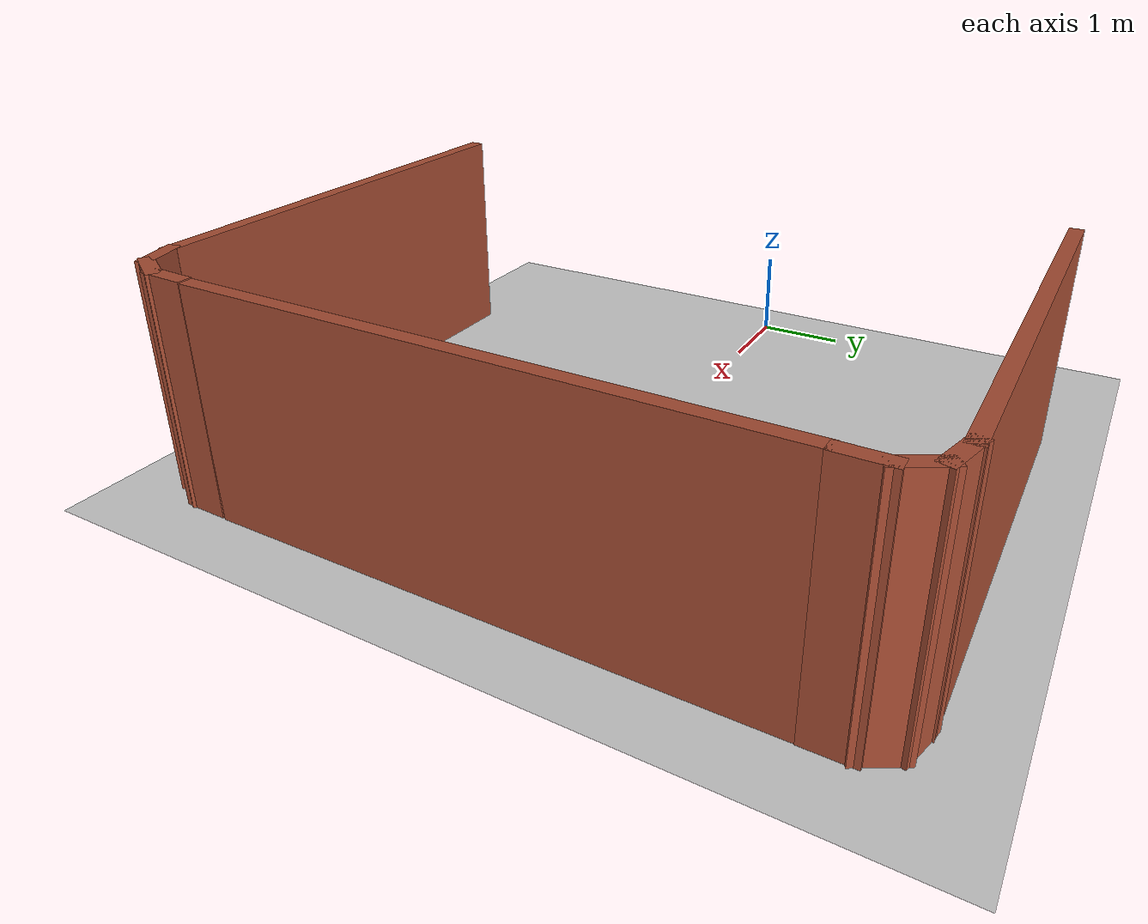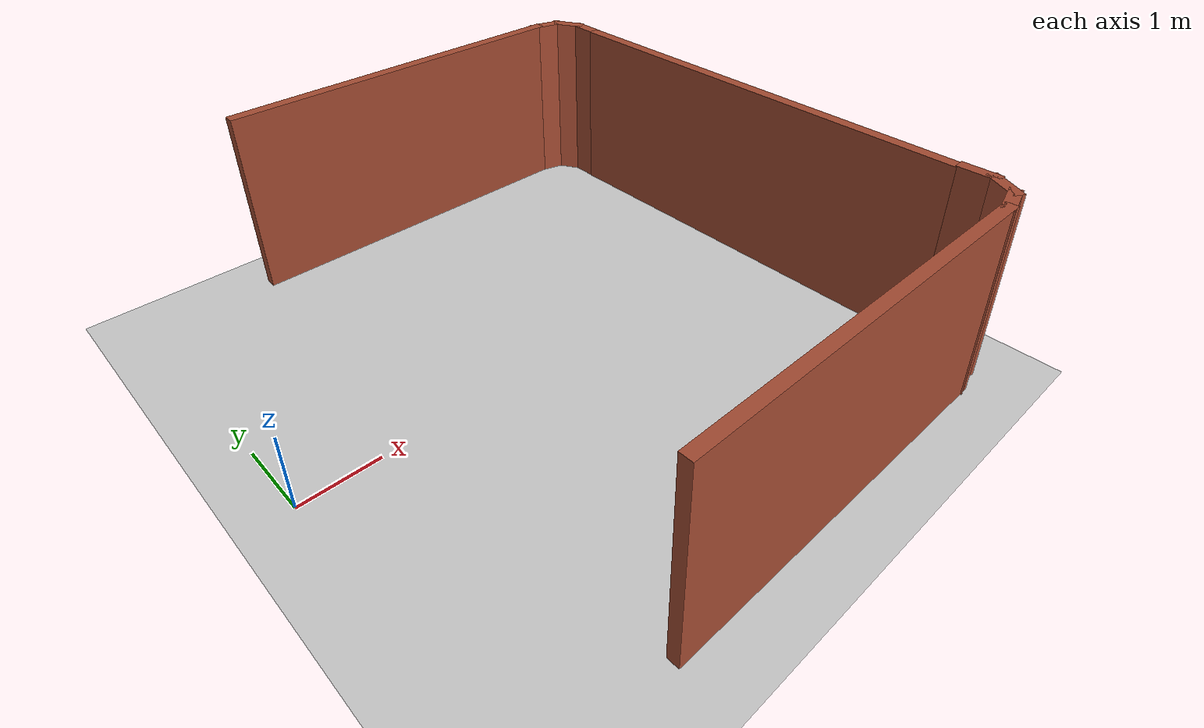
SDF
<sdf version="1.6">
 <world name="default">
  <light name="sun" type="directional">
   <pose>0 0 10 0 -0 0</pose>
   <diffuse>0.8 0.8 0.8 1</diffuse>
   <specular>0.2 0.2 0.2 1</specular>
   <attenuation>
    <range>1000</range>
    <constant>0.9</constant>
    <linear>0.01</linear>
    <quadratic>0.001</quadratic>
   </attenuation>
   <direction>-0.5 0.1 -0.9</direction>
  </light>
  <model name="ground_plane">
   <static>1</static>
   <link name="link">
    <collision name="collision">
     <geometry><plane><normal>0 0 1</normal><size>100 100</size></plane></geometry>
     <surface><friction><ode><mu>100</mu><mu2>50</mu2></ode></friction></surface>
    </collision>
    <visual name="visual">
     <cast_shadows>0</cast_shadows>
     <geometry><plane><normal>0 0 1</normal><size>100 100</size></plane></geometry>
     <material>
      <script><uri>file://media/materials/scripts/gazebo.material</uri><name>Gazebo/Grey</name></script>
     </material>
    </visual>
   </link>
  </model>
  <gravity>0 0 -9.8</gravity>
  <magnetic_field>6e-06 2.3e-05 -4.2e-05</magnetic_field>
  <atmosphere type="adiabatic"/>
  <physics name="default_physics" default="0" type="ode">
   <max_step_size>0.001</max_step_size>
   <real_time_factor>1</real_time_factor>
   <real_time_update_rate>1000</real_time_update_rate>
  </physics>
  <scene><ambient>0.4 0.4 0.4 1</ambient><background>0.7 0.7 0.7 1</background><shadows>1</shadows></scene>
  <audio><device>default</device></audio>
  <spherical_coordinates>
   <surface_model>EARTH_WGS84</surface_model>
   <latitude_deg>0</latitude_deg>
   <longitude_deg>0</longitude_deg>
   <elevation>0</elevation>
   <heading_deg>0</heading_deg>
  </spherical_coordinates>
  <model name="6mWall">
   <pose>6.99559 0.068896 0 0 -0 0</pose>
   <link name="Wall_3">
    <collision name="Wall_3_Collision">
     <geometry><box><size>6 0.15 2.5</size></box></geometry>
     <pose>0 0 1.25 0 -0 0</pose>
    </collision>
    <visual name="Wall_3_Visual">
     <pose>0 0 1.25 0 -0 0</pose>
     <geometry><box><size>6 0.15 2.5</size></box></geometry>
     <material>
      <script><uri>file://media/materials/scripts/gazebo.material</uri><name>Gazebo/Bricks</name></script>
      <ambient>1 1 1 1</ambient>
     </material>
     <meta><layer>0</layer></meta>
    </visual>
    <pose>0 -0 0 0 -0 1.5708</pose>
   </link>
   <static>1</static>
  </model>
  <model name="u_shape_part">
   <pose>4.33552 3.46905 0 0 -0 1.56859</pose>
   <link name="Wall_2">
    <collision name="Wall_2_Collision">
     <geometry><box><size>0.5 0.15 2.5</size></box></geometry>
     <pose>0 0 1.25 0 -0 0</pose>
    </collision>
    <visual name="Wall_2_Visual">
     <pose>0 0 1.25 0 -0 0</pose>
     <geometry><box><size>0.5 0.15 2.5</size></box></geometry>
     <material>
      <script><uri>file://media/materials/scripts/gazebo.material</uri><name>Gazebo/Bricks</name></script>
      <ambient>1 1 1 1</ambient>
     </material>
     <meta><layer>0</layer></meta>
    </visual>
    <pose>-0.205276 -2.66781 0 0 -0 0</pose>
   </link>
   <link name="Wall_3">
    <collision name="Wall_3_Collision">
     <geometry><box><size>0.5 0.15 2.5</size></box></geometry>
     <pose>0 0 1.25 0 -0 0</pose>
    </collision>
    <visual name="Wall_3_Visual">
     <pose>0 0 1.25 0 -0 0</pose>
     <geometry><box><size>0.5 0.15 2.5</size></box></geometry>
     <material>
      <script><uri>file://media/materials/scripts/gazebo.material</uri><name>Gazebo/Bricks</name></script>
      <ambient>1 1 1 1</ambient>
     </material>
     <meta><layer>0</layer></meta>
    </visual>
    <pose>0.121279 -2.58031 0 0 -0 0.523599</pose>
   </link>
   <link name="Wall_4">
    <collision name="Wall_4_Collision">
     <geometry><box><size>0.5 0.15 2.5</size></box></geometry>
     <pose>0 0 1.25 0 -0 0</pose>
    </collision>
    <visual name="Wall_4_Visual">
     <pose>0 0 1.25 0 -0 0</pose>
     <geometry><box><size>0.5 0.15 2.5</size></box></geometry>
     <material>
      <script><uri>file://media/materials/scripts/gazebo.material</uri><name>Gazebo/Bricks</name></script>
      <ambient>1 1 1 1</ambient>
     </material>
     <meta><layer>0</layer></meta>
    </visual>
    <pose>0.318126 -2.32377 0 0 -0 1.309</pose>
   </link>
   <link name="Wall_5">
    <collision name="Wall_5_Collision">
     <geometry><box><size>5 0.15 2.5</size></box></geometry>
     <pose>0 0 1.25 0 -0 0</pose>
    </collision>
    <visual name="Wall_5_Visual">
     <pose>0 0 1.25 0 -0 0</pose>
     <geometry><box><size>5 0.15 2.5</size></box></geometry>
     <material>
      <script><uri>file://media/materials/scripts/gazebo.material</uri><name>Gazebo/Bricks</name></script>
      <ambient>1 1 1 1</ambient>
     </material>
     <meta><layer>0</layer></meta>
    </visual>
    <pose>0.36342 0.270263 0 0 -0 1.5708</pose>
   </link>
   <static>1</static>
  </model>
  <model name="u_shape_part_clone">
   <pose>4.33345 -3.36047 2.51859 3.14159 -0.012814 -1.573</pose>
   <link name="Wall_2">
    <collision name="Wall_2_Collision">
     <geometry><box><size>0.5 0.15 2.5</size></box></geometry>
     <pose>0 0 1.25 0 -0 0</pose>
    </collision>
    <visual name="Wall_2_Visual">
     <pose>0 0 1.25 0 -0 0</pose>
     <geometry><box><size>0.5 0.15 2.5</size></box></geometry>
     <material>
      <script><uri>file://media/materials/scripts/gazebo.material</uri><name>Gazebo/Bricks</name></script>
      <ambient>1 1 1 1</ambient>
     </material>
     <meta><layer>0</layer></meta>
    </visual>
    <pose>-0.205276 -2.66781 0 0 -0 0</pose>
   </link>
   <link name="Wall_3">
    <collision name="Wall_3_Collision">
     <geometry><box><size>0.5 0.15 2.5</size></box></geometry>
     <pose>0 0 1.25 0 -0 0</pose>
    </collision>
    <visual name="Wall_3_Visual">
     <pose>0 0 1.25 0 -0 0</pose>
     <geometry><box><size>0.5 0.15 2.5</size></box></geometry>
     <material>
      <script><uri>file://media/materials/scripts/gazebo.material</uri><name>Gazebo/Bricks</name></script>
      <ambient>1 1 1 1</ambient>
     </material>
     <meta><layer>0</layer></meta>
    </visual>
    <pose>0.121279 -2.58031 0 0 -0 0.523599</pose>
   </link>
   <link name="Wall_4">
    <collision name="Wall_4_Collision">
     <geometry><box><size>0.5 0.15 2.5</size></box></geometry>
     <pose>0 0 1.25 0 -0 0</pose>
    </collision>
    <visual name="Wall_4_Visual">
     <pose>0 0 1.25 0 -0 0</pose>
     <geometry><box><size>0.5 0.15 2.5</size></box></geometry>
     <material>
      <script><uri>file://media/materials/scripts/gazebo.material</uri><name>Gazebo/Bricks</name></script>
      <ambient>1 1 1 1</ambient>
     </material>
     <meta><layer>0</layer></meta>
    </visual>
    <pose>0.318126 -2.32377 0 0 -0 1.309</pose>
   </link>
   <link name="Wall_5">
    <collision name="Wall_5_Collision">
     <geometry><box><size>5 0.15 2.5</size></box></geometry>
     <pose>0 0 1.25 0 -0 0</pose>
    </collision>
    <visual name="Wall_5_Visual">
     <pose>0 0 1.25 0 -0 0</pose>
     <geometry><box><size>5 0.15 2.5</size></box></geometry>
     <material>
      <script><uri>file://media/materials/scripts/gazebo.material</uri><name>Gazebo/Bricks</name></script>
      <ambient>1 1 1 1</ambient>
     </material>
     <meta><layer>0</layer></meta>
    </visual>
    <pose>0.36342 0.270263 0 0 -0 1.5708</pose>
   </link>
   <static>1</static>
  </model>
 </world>
</sdf>
